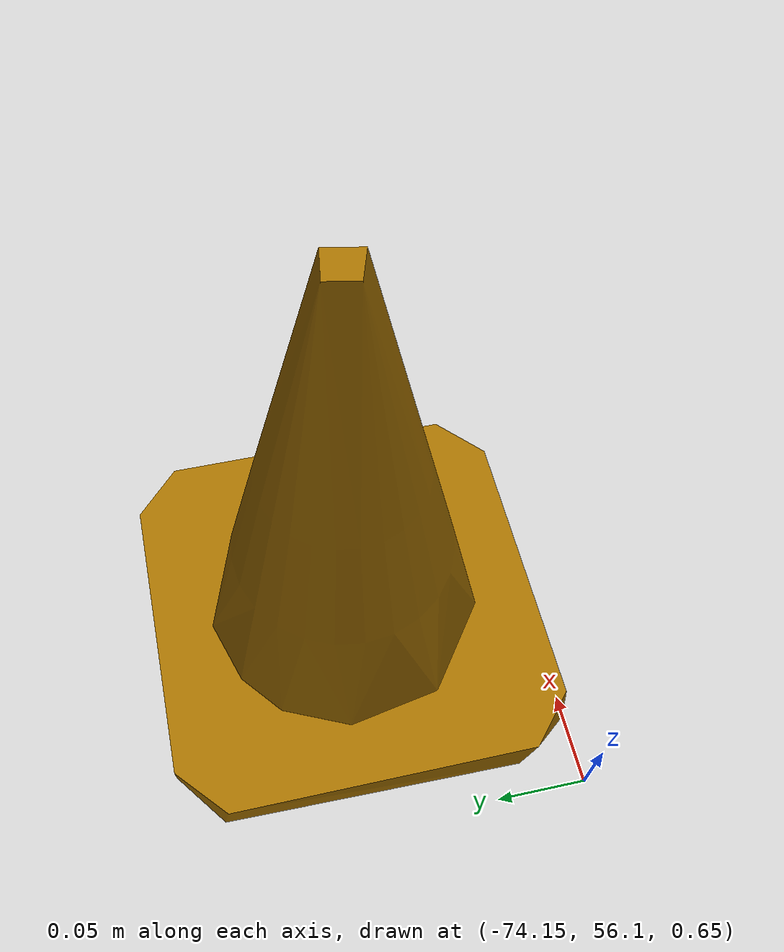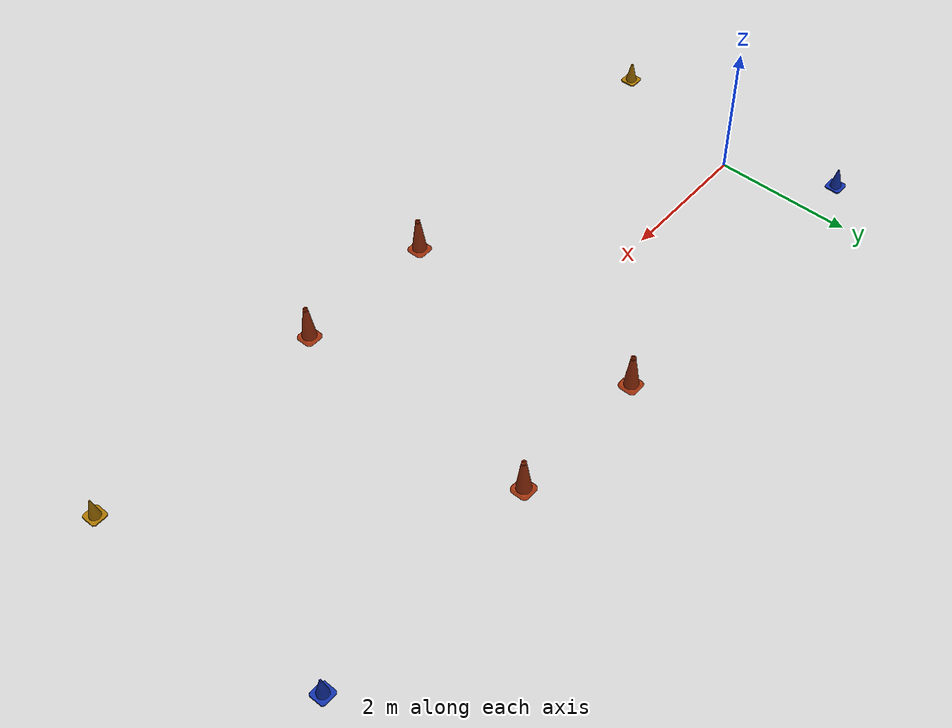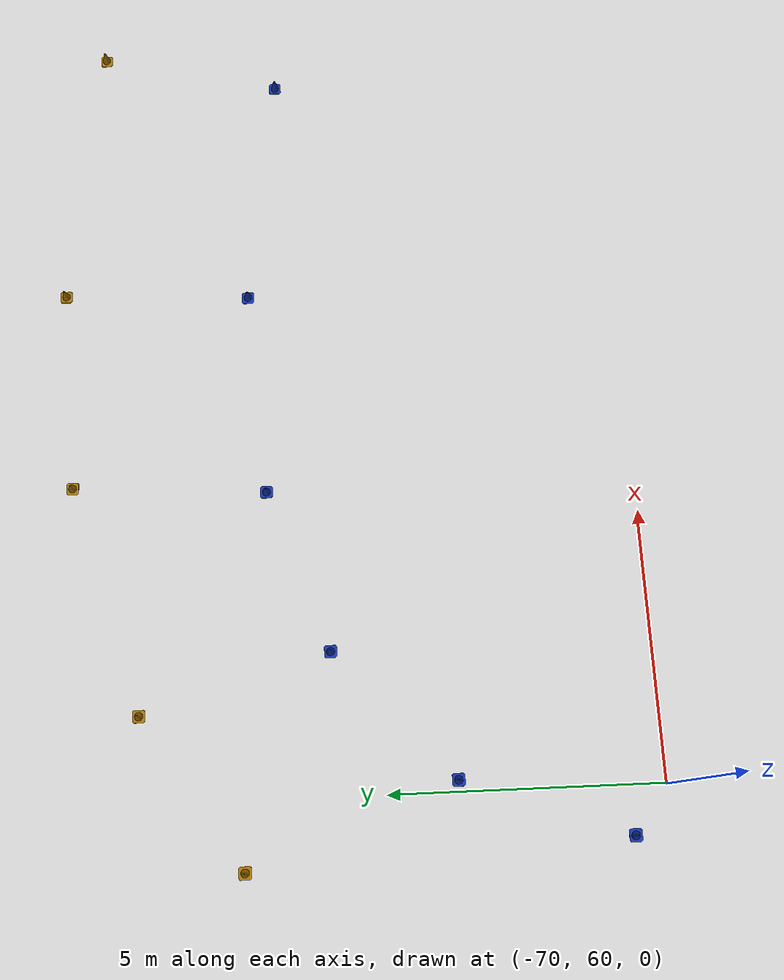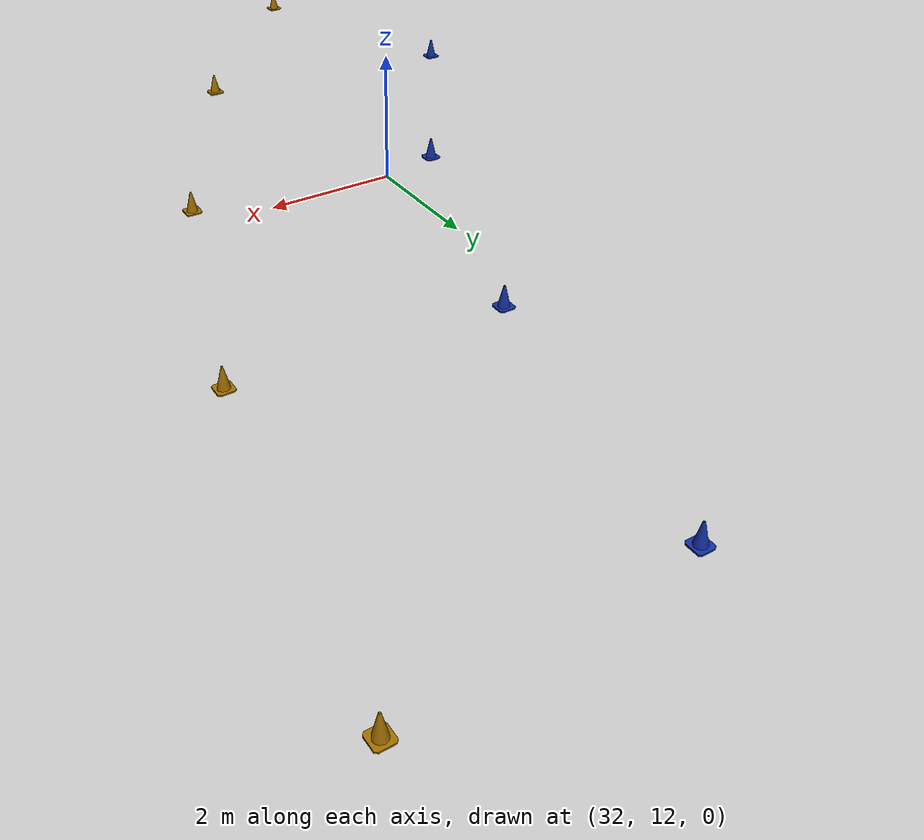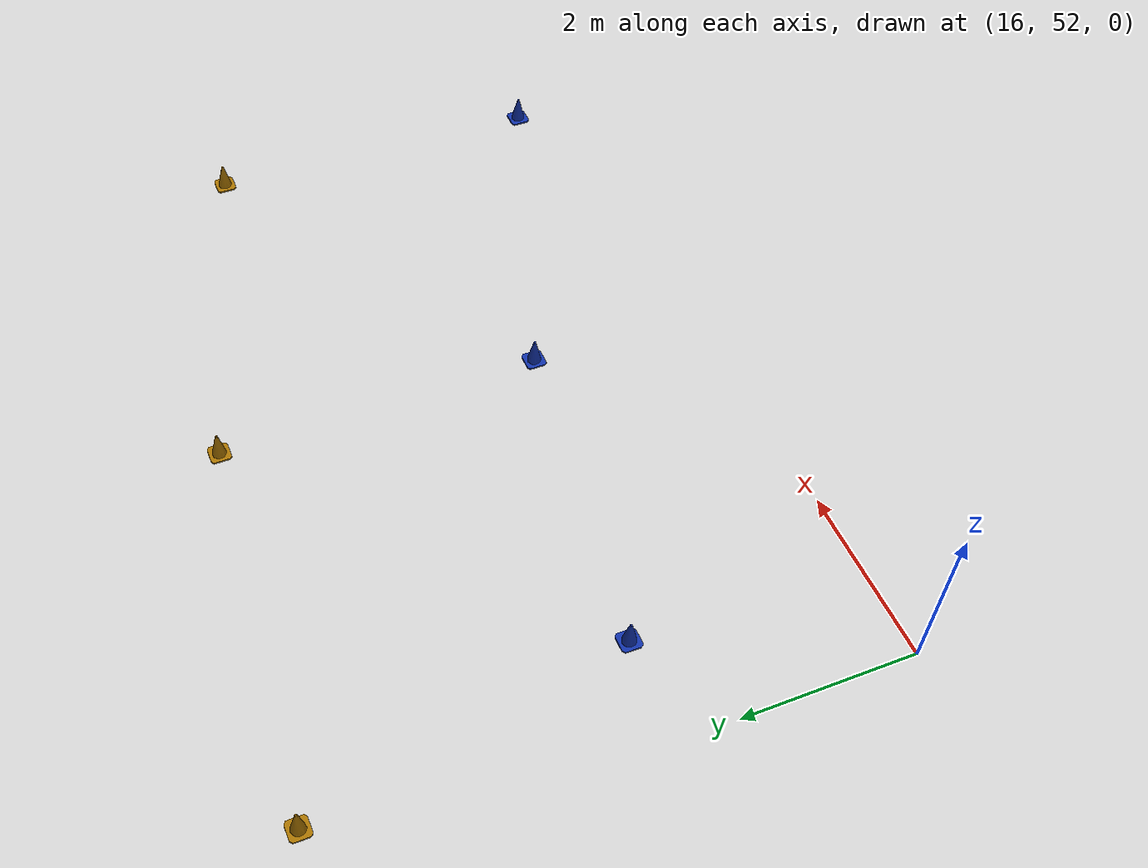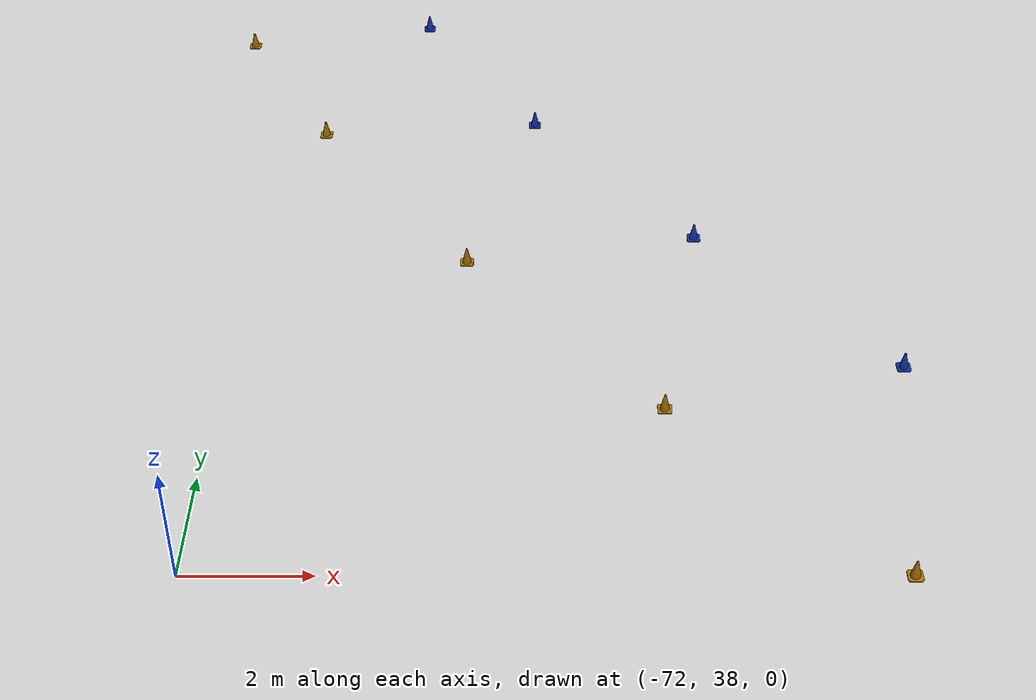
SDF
<sdf version='1.6'>
  <world name='BM_text_bubble'>
    <gui fullscreen='0'>
      <camera name='user_camera'>
        <pose frame=''>-40 40 20 0 0.667643 -1</pose>
        <view_controller>orbit</view_controller>
        <projection_type>perspective</projection_type>
      </camera>
    </gui>

    <!-- WORLD SETTINGS -->
    <scene>
      <ambient>1.0 1.0 1.0 1.0</ambient>
      <shadows>false</shadows>
    </scene>

    <spherical_coordinates>
      <heading_deg>180</heading_deg>

      <!-- Appleton Tower coordinates -->
      <latitude_deg>-27.690733</latitude_deg>
      <longitude_deg>152.656715</longitude_deg>
    </spherical_coordinates>

    <light name='sun' type='directional'>
      <cast_shadows>1</cast_shadows>
      <pose frame=''>0 0 10 0 -0 0</pose>
      <diffuse>0.8 0.8 0.8 1</diffuse>
      <specular>0.1 0.1 0.1 1</specular>
      <attenuation>
        <range>1000</range>
        <constant>0.9</constant>
        <linear>0.01</linear>
        <quadratic>0.001</quadratic>
      </attenuation>
      <direction>-0.5 0.5 -1</direction>
    </light>

    <!-- MODELS -->
    <include>
      <uri>model://ground_plane</uri>
      <pose>0.0 0.0 0.0 0 0 0</pose>
    </include>

    <include>
      <uri>model://BM_text_bubble</uri>
      <pose>0 0 0.5 0 0 0</pose>
    </include>

  </world>
</sdf>

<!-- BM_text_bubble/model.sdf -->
<sdf version='1.6'>
  <model name='track'>

    <include>
      <pose>9.85 1.74 0.15 0 0 0</pose>
      <uri>model://blue_cone</uri>
      <name>blue_cone_0</name>

      <covariance x="0.01" y="0.01" xy="0.0"/>

    </include>

    <include>
      <pose>14.81 2.13 0.15 0 0 0</pose>
      <uri>model://blue_cone</uri>
      <name>blue_cone_1</name>

      <covariance x="0.01" y="0.01" xy="0.0"/>

    </include>

    <include>
      <pose>18.9 2.92 0.15 0 0 0</pose>
      <uri>model://blue_cone</uri>
      <name>blue_cone_2</name>

      <covariance x="0.01" y="0.01" xy="0.0"/>

    </include>

    <include>
      <pose>23.26 4.51 0.15 0 0 0</pose>
      <uri>model://blue_cone</uri>
      <name>blue_cone_3</name>

      <covariance x="0.01" y="0.01" xy="0.0"/>

    </include>

    <include>
      <pose>26.48 6.47 0.15 0 0 0</pose>
      <uri>model://blue_cone</uri>
      <name>blue_cone_4</name>

      <covariance x="0.01" y="0.01" xy="0.0"/>

    </include>

    <include>
      <pose>29.53 9.39 0.15 0 0 0</pose>
      <uri>model://blue_cone</uri>
      <name>blue_cone_5</name>

      <covariance x="0.01" y="0.01" xy="0.0"/>

    </include>

    <include>
      <pose>31.77 12.9 0.15 0 0 0</pose>
      <uri>model://blue_cone</uri>
      <name>blue_cone_6</name>

      <covariance x="0.01" y="0.01" xy="0.0"/>

    </include>

    <include>
      <pose>33.24 16.84 0.15 0 0 0</pose>
      <uri>model://blue_cone</uri>
      <name>blue_cone_7</name>

      <covariance x="0.01" y="0.01" xy="0.0"/>

    </include>

    <include>
      <pose>34.05 21.07 0.15 0 0 0</pose>
      <uri>model://blue_cone</uri>
      <name>blue_cone_8</name>

      <covariance x="0.01" y="0.01" xy="0.0"/>

    </include>

    <include>
      <pose>34.36 25.45 0.15 0 0 0</pose>
      <uri>model://blue_cone</uri>
      <name>blue_cone_9</name>

      <covariance x="0.01" y="0.01" xy="0.0"/>

    </include>

    <include>
      <pose>34.27 30.51 0.15 0 0 0</pose>
      <uri>model://blue_cone</uri>
      <name>blue_cone_10</name>

      <covariance x="0.01" y="0.01" xy="0.0"/>

    </include>

    <include>
      <pose>33.9 34.93 0.15 0 0 0</pose>
      <uri>model://blue_cone</uri>
      <name>blue_cone_11</name>

      <covariance x="0.01" y="0.01" xy="0.0"/>

    </include>

    <include>
      <pose>33.07 39.87 0.15 0 0 0</pose>
      <uri>model://blue_cone</uri>
      <name>blue_cone_12</name>

      <covariance x="0.01" y="0.01" xy="0.0"/>

    </include>

    <include>
      <pose>31.84 43.98 0.15 0 0 0</pose>
      <uri>model://blue_cone</uri>
      <name>blue_cone_13</name>

      <covariance x="0.01" y="0.01" xy="0.0"/>

    </include>

    <include>
      <pose>29.94 47.7 0.15 0 0 0</pose>
      <uri>model://blue_cone</uri>
      <name>blue_cone_14</name>

      <covariance x="0.01" y="0.01" xy="0.0"/>

    </include>

    <include>
      <pose>27.67 50.43 0.15 0 0 0</pose>
      <uri>model://blue_cone</uri>
      <name>blue_cone_15</name>

      <covariance x="0.01" y="0.01" xy="0.0"/>

    </include>

    <include>
      <pose>24.19 52.92 0.15 0 0 0</pose>
      <uri>model://blue_cone</uri>
      <name>blue_cone_16</name>

      <covariance x="0.01" y="0.01" xy="0.0"/>

    </include>

    <include>
      <pose>20.45 54.3 0.15 0 0 0</pose>
      <uri>model://blue_cone</uri>
      <name>blue_cone_17</name>

      <covariance x="0.01" y="0.01" xy="0.0"/>

    </include>

    <include>
      <pose>16.87 54.84 0.15 0 0 0</pose>
      <uri>model://blue_cone</uri>
      <name>blue_cone_18</name>

      <covariance x="0.01" y="0.01" xy="0.0"/>

    </include>

    <include>
      <pose>12.12 54.72 0.15 0 0 0</pose>
      <uri>model://blue_cone</uri>
      <name>blue_cone_19</name>

      <covariance x="0.01" y="0.01" xy="0.0"/>

    </include>

    <include>
      <pose>7.96 54.02 0.15 0 0 0</pose>
      <uri>model://blue_cone</uri>
      <name>blue_cone_20</name>

      <covariance x="0.01" y="0.01" xy="0.0"/>

    </include>

    <include>
      <pose>2.92 52.61 0.15 0 0 0</pose>
      <uri>model://blue_cone</uri>
      <name>blue_cone_21</name>

      <covariance x="0.01" y="0.01" xy="0.0"/>

    </include>

    <include>
      <pose>-1.19 51.14 0.15 0 0 0</pose>
      <uri>model://blue_cone</uri>
      <name>blue_cone_22</name>

      <covariance x="0.01" y="0.01" xy="0.0"/>

    </include>

    <include>
      <pose>-5.9 49.35 0.15 0 0 0</pose>
      <uri>model://blue_cone</uri>
      <name>blue_cone_23</name>

      <covariance x="0.01" y="0.01" xy="0.0"/>

    </include>

    <include>
      <pose>-10.39 47.89 0.15 0 0 0</pose>
      <uri>model://blue_cone</uri>
      <name>blue_cone_24</name>

      <covariance x="0.01" y="0.01" xy="0.0"/>

    </include>

    <include>
      <pose>-14.77 47.15 0.15 0 0 0</pose>
      <uri>model://blue_cone</uri>
      <name>blue_cone_25</name>

      <covariance x="0.01" y="0.01" xy="0.0"/>

    </include>

    <include>
      <pose>-19.13 47.5 0.15 0 0 0</pose>
      <uri>model://blue_cone</uri>
      <name>blue_cone_26</name>

      <covariance x="0.01" y="0.01" xy="0.0"/>

    </include>

    <include>
      <pose>-22.77 48.69 0.15 0 0 0</pose>
      <uri>model://blue_cone</uri>
      <name>blue_cone_27</name>

      <covariance x="0.01" y="0.01" xy="0.0"/>

    </include>

    <include>
      <pose>-27.24 51.07 0.15 0 0 0</pose>
      <uri>model://blue_cone</uri>
      <name>blue_cone_28</name>

      <covariance x="0.01" y="0.01" xy="0.0"/>

    </include>

    <include>
      <pose>-31.21 53.64 0.15 0 0 0</pose>
      <uri>model://blue_cone</uri>
      <name>blue_cone_29</name>

      <covariance x="0.01" y="0.01" xy="0.0"/>

    </include>

    <include>
      <pose>-35.51 56.55 0.15 0 0 0</pose>
      <uri>model://blue_cone</uri>
      <name>blue_cone_30</name>

      <covariance x="0.01" y="0.01" xy="0.0"/>

    </include>

    <include>
      <pose>-39.2 58.95 0.15 0 0 0</pose>
      <uri>model://blue_cone</uri>
      <name>blue_cone_31</name>

      <covariance x="0.01" y="0.01" xy="0.0"/>

    </include>

    <include>
      <pose>-43.08 61.26 0.15 0 0 0</pose>
      <uri>model://blue_cone</uri>
      <name>blue_cone_32</name>

      <covariance x="0.01" y="0.01" xy="0.0"/>

    </include>

    <include>
      <pose>-47.1 63.35 0.15 0 0 0</pose>
      <uri>model://blue_cone</uri>
      <name>blue_cone_33</name>

      <covariance x="0.01" y="0.01" xy="0.0"/>

    </include>

    <include>
      <pose>-52.15 65.45 0.15 0 0 0</pose>
      <uri>model://blue_cone</uri>
      <name>blue_cone_34</name>

      <covariance x="0.01" y="0.01" xy="0.0"/>

    </include>

    <include>
      <pose>-56.08 66.59 0.15 0 0 0</pose>
      <uri>model://blue_cone</uri>
      <name>blue_cone_35</name>

      <covariance x="0.01" y="0.01" xy="0.0"/>

    </include>

    <include>
      <pose>-60.63 67.23 0.15 0 0 0</pose>
      <uri>model://blue_cone</uri>
      <name>blue_cone_36</name>

      <covariance x="0.01" y="0.01" xy="0.0"/>

    </include>

    <include>
      <pose>-64.51 66.97 0.15 0 0 0</pose>
      <uri>model://blue_cone</uri>
      <name>blue_cone_37</name>

      <covariance x="0.01" y="0.01" xy="0.0"/>

    </include>

    <include>
      <pose>-67.49 65.9 0.15 0 0 0</pose>
      <uri>model://blue_cone</uri>
      <name>blue_cone_38</name>

      <covariance x="0.01" y="0.01" xy="0.0"/>

    </include>

    <include>
      <pose>-69.8 63.76 0.15 0 0 0</pose>
      <uri>model://blue_cone</uri>
      <name>blue_cone_39</name>

      <covariance x="0.01" y="0.01" xy="0.0"/>

    </include>

    <include>
      <pose>-70.85 60.78 0.15 0 0 0</pose>
      <uri>model://blue_cone</uri>
      <name>blue_cone_40</name>

      <covariance x="0.01" y="0.01" xy="0.0"/>

    </include>

    <include>
      <pose>-70.6 56.98 0.15 0 0 0</pose>
      <uri>model://blue_cone</uri>
      <name>blue_cone_41</name>

      <covariance x="0.01" y="0.01" xy="0.0"/>

    </include>

    <include>
      <pose>-69.02 52.65 0.15 0 0 0</pose>
      <uri>model://blue_cone</uri>
      <name>blue_cone_42</name>

      <covariance x="0.01" y="0.01" xy="0.0"/>

    </include>

    <include>
      <pose>-66.84 48.92 0.15 0 0 0</pose>
      <uri>model://blue_cone</uri>
      <name>blue_cone_43</name>

      <covariance x="0.01" y="0.01" xy="0.0"/>

    </include>

    <include>
      <pose>-64.08 45.27 0.15 0 0 0</pose>
      <uri>model://blue_cone</uri>
      <name>blue_cone_44</name>

      <covariance x="0.01" y="0.01" xy="0.0"/>

    </include>

    <include>
      <pose>-61.0 41.8 0.15 0 0 0</pose>
      <uri>model://blue_cone</uri>
      <name>blue_cone_45</name>

      <covariance x="0.01" y="0.01" xy="0.0"/>

    </include>

    <include>
      <pose>-57.82 38.55 0.15 0 0 0</pose>
      <uri>model://blue_cone</uri>
      <name>blue_cone_46</name>

      <covariance x="0.01" y="0.01" xy="0.0"/>

    </include>

    <include>
      <pose>-54.18 34.88 0.15 0 0 0</pose>
      <uri>model://blue_cone</uri>
      <name>blue_cone_47</name>

      <covariance x="0.01" y="0.01" xy="0.0"/>

    </include>

    <include>
      <pose>-50.95 31.37 0.15 0 0 0</pose>
      <uri>model://blue_cone</uri>
      <name>blue_cone_48</name>

      <covariance x="0.01" y="0.01" xy="0.0"/>

    </include>

    <include>
      <pose>-48.27 27.85 0.15 0 0 0</pose>
      <uri>model://blue_cone</uri>
      <name>blue_cone_49</name>

      <covariance x="0.01" y="0.01" xy="0.0"/>

    </include>

    <include>
      <pose>-45.87 23.63 0.15 0 0 0</pose>
      <uri>model://blue_cone</uri>
      <name>blue_cone_50</name>

      <covariance x="0.01" y="0.01" xy="0.0"/>

    </include>

    <include>
      <pose>-44.03 19.29 0.15 0 0 0</pose>
      <uri>model://blue_cone</uri>
      <name>blue_cone_51</name>

      <covariance x="0.01" y="0.01" xy="0.0"/>

    </include>

    <include>
      <pose>-42.15 14.33 0.15 0 0 0</pose>
      <uri>model://blue_cone</uri>
      <name>blue_cone_52</name>

      <covariance x="0.01" y="0.01" xy="0.0"/>

    </include>

    <include>
      <pose>-40.26 10.21 0.15 0 0 0</pose>
      <uri>model://blue_cone</uri>
      <name>blue_cone_53</name>

      <covariance x="0.01" y="0.01" xy="0.0"/>

    </include>

    <include>
      <pose>-38.25 7.05 0.15 0 0 0</pose>
      <uri>model://blue_cone</uri>
      <name>blue_cone_54</name>

      <covariance x="0.01" y="0.01" xy="0.0"/>

    </include>

    <include>
      <pose>-35.37 4.0 0.15 0 0 0</pose>
      <uri>model://blue_cone</uri>
      <name>blue_cone_55</name>

      <covariance x="0.01" y="0.01" xy="0.0"/>

    </include>

    <include>
      <pose>-31.91 1.8 0.15 0 0 0</pose>
      <uri>model://blue_cone</uri>
      <name>blue_cone_56</name>

      <covariance x="0.01" y="0.01" xy="0.0"/>

    </include>

    <include>
      <pose>-27.96 0.48 0.15 0 0 0</pose>
      <uri>model://blue_cone</uri>
      <name>blue_cone_57</name>

      <covariance x="0.01" y="0.01" xy="0.0"/>

    </include>

    <include>
      <pose>-23.66 -0.02 0.15 0 0 0</pose>
      <uri>model://blue_cone</uri>
      <name>blue_cone_58</name>

      <covariance x="0.01" y="0.01" xy="0.0"/>

    </include>

    <include>
      <pose>-19.17 0.13 0.15 0 0 0</pose>
      <uri>model://blue_cone</uri>
      <name>blue_cone_59</name>

      <covariance x="0.01" y="0.01" xy="0.0"/>

    </include>

    <include>
      <pose>-13.97 0.72 0.15 0 0 0</pose>
      <uri>model://blue_cone</uri>
      <name>blue_cone_60</name>

      <covariance x="0.01" y="0.01" xy="0.0"/>

    </include>

    <include>
      <pose>-9.39 1.28 0.15 0 0 0</pose>
      <uri>model://blue_cone</uri>
      <name>blue_cone_61</name>

      <covariance x="0.01" y="0.01" xy="0.0"/>

    </include>

    <include>
      <pose>-4.74 1.64 0.15 0 0 0</pose>
      <uri>model://blue_cone</uri>
      <name>blue_cone_62</name>

      <covariance x="0.01" y="0.01" xy="0.0"/>

    </include>

    <include>
      <pose>0.0 1.75 0.15 0 0 0</pose>
      <uri>model://blue_cone</uri>
      <name>blue_cone_63</name>

      <covariance x="0.01" y="0.01" xy="0.0"/>

    </include>

    <include>
      <pose>9.97 -1.76 0.15 0 0 0</pose>
      <uri>model://yellow_cone</uri>
      <name>yellow_cone_64</name>

      <covariance x="0.01" y="0.01" xy="0.0"/>

    </include>

    <include>
      <pose>14.51 -1.44 0.15 0 0 0</pose>
      <uri>model://yellow_cone</uri>
      <name>yellow_cone_65</name>

      <covariance x="0.01" y="0.01" xy="0.0"/>

    </include>

    <include>
      <pose>19.05 -0.65 0.15 0 0 0</pose>
      <uri>model://yellow_cone</uri>
      <name>yellow_cone_66</name>

      <covariance x="0.01" y="0.01" xy="0.0"/>

    </include>

    <include>
      <pose>23.4 0.75 0.15 0 0 0</pose>
      <uri>model://yellow_cone</uri>
      <name>yellow_cone_67</name>

      <covariance x="0.01" y="0.01" xy="0.0"/>

    </include>

    <include>
      <pose>27.38 2.83 0.15 0 0 0</pose>
      <uri>model://yellow_cone</uri>
      <name>yellow_cone_68</name>

      <covariance x="0.01" y="0.01" xy="0.0"/>

    </include>

    <include>
      <pose>30.79 5.58 0.15 0 0 0</pose>
      <uri>model://yellow_cone</uri>
      <name>yellow_cone_69</name>

      <covariance x="0.01" y="0.01" xy="0.0"/>

    </include>

    <include>
      <pose>33.51 8.9 0.15 0 0 0</pose>
      <uri>model://yellow_cone</uri>
      <name>yellow_cone_70</name>

      <covariance x="0.01" y="0.01" xy="0.0"/>

    </include>

    <include>
      <pose>35.49 12.63 0.15 0 0 0</pose>
      <uri>model://yellow_cone</uri>
      <name>yellow_cone_71</name>

      <covariance x="0.01" y="0.01" xy="0.0"/>

    </include>

    <include>
      <pose>36.79 16.59 0.15 0 0 0</pose>
      <uri>model://yellow_cone</uri>
      <name>yellow_cone_72</name>

      <covariance x="0.01" y="0.01" xy="0.0"/>

    </include>

    <include>
      <pose>37.6 21.32 0.15 0 0 0</pose>
      <uri>model://yellow_cone</uri>
      <name>yellow_cone_73</name>

      <covariance x="0.01" y="0.01" xy="0.0"/>

    </include>

    <include>
      <pose>37.87 26.03 0.15 0 0 0</pose>
      <uri>model://yellow_cone</uri>
      <name>yellow_cone_74</name>

      <covariance x="0.01" y="0.01" xy="0.0"/>

    </include>

    <include>
      <pose>37.77 30.7 0.15 0 0 0</pose>
      <uri>model://yellow_cone</uri>
      <name>yellow_cone_75</name>

      <covariance x="0.01" y="0.01" xy="0.0"/>

    </include>

    <include>
      <pose>37.38 35.34 0.15 0 0 0</pose>
      <uri>model://yellow_cone</uri>
      <name>yellow_cone_76</name>

      <covariance x="0.01" y="0.01" xy="0.0"/>

    </include>

    <include>
      <pose>36.63 39.99 0.15 0 0 0</pose>
      <uri>model://yellow_cone</uri>
      <name>yellow_cone_77</name>

      <covariance x="0.01" y="0.01" xy="0.0"/>

    </include>

    <include>
      <pose>35.34 44.6 0.15 0 0 0</pose>
      <uri>model://yellow_cone</uri>
      <name>yellow_cone_78</name>

      <covariance x="0.01" y="0.01" xy="0.0"/>

    </include>

    <include>
      <pose>33.6 48.41 0.15 0 0 0</pose>
      <uri>model://yellow_cone</uri>
      <name>yellow_cone_79</name>

      <covariance x="0.01" y="0.01" xy="0.0"/>

    </include>

    <include>
      <pose>31.11 51.91 0.15 0 0 0</pose>
      <uri>model://yellow_cone</uri>
      <name>yellow_cone_80</name>

      <covariance x="0.01" y="0.01" xy="0.0"/>

    </include>

    <include>
      <pose>28.39 54.4 0.15 0 0 0</pose>
      <uri>model://yellow_cone</uri>
      <name>yellow_cone_81</name>

      <covariance x="0.01" y="0.01" xy="0.0"/>

    </include>

    <include>
      <pose>24.37 56.69 0.15 0 0 0</pose>
      <uri>model://yellow_cone</uri>
      <name>yellow_cone_82</name>

      <covariance x="0.01" y="0.01" xy="0.0"/>

    </include>

    <include>
      <pose>20.48 57.88 0.15 0 0 0</pose>
      <uri>model://yellow_cone</uri>
      <name>yellow_cone_83</name>

      <covariance x="0.01" y="0.01" xy="0.0"/>

    </include>

    <include>
      <pose>16.22 58.38 0.15 0 0 0</pose>
      <uri>model://yellow_cone</uri>
      <name>yellow_cone_84</name>

      <covariance x="0.01" y="0.01" xy="0.0"/>

    </include>

    <include>
      <pose>11.75 58.2 0.15 0 0 0</pose>
      <uri>model://yellow_cone</uri>
      <name>yellow_cone_85</name>

      <covariance x="0.01" y="0.01" xy="0.0"/>

    </include>

    <include>
      <pose>7.19 57.43 0.15 0 0 0</pose>
      <uri>model://yellow_cone</uri>
      <name>yellow_cone_86</name>

      <covariance x="0.01" y="0.01" xy="0.0"/>

    </include>

    <include>
      <pose>2.7 56.21 0.15 0 0 0</pose>
      <uri>model://yellow_cone</uri>
      <name>yellow_cone_87</name>

      <covariance x="0.01" y="0.01" xy="0.0"/>

    </include>

    <include>
      <pose>-2.42 54.42 0.15 0 0 0</pose>
      <uri>model://yellow_cone</uri>
      <name>yellow_cone_88</name>

      <covariance x="0.01" y="0.01" xy="0.0"/>

    </include>

    <include>
      <pose>-7.11 52.64 0.15 0 0 0</pose>
      <uri>model://yellow_cone</uri>
      <name>yellow_cone_89</name>

      <covariance x="0.01" y="0.01" xy="0.0"/>

    </include>

    <include>
      <pose>-11.28 51.27 0.15 0 0 0</pose>
      <uri>model://yellow_cone</uri>
      <name>yellow_cone_90</name>

      <covariance x="0.01" y="0.01" xy="0.0"/>

    </include>

    <include>
      <pose>-14.96 50.65 0.15 0 0 0</pose>
      <uri>model://yellow_cone</uri>
      <name>yellow_cone_91</name>

      <covariance x="0.01" y="0.01" xy="0.0"/>

    </include>

    <include>
      <pose>-18.97 51.05 0.15 0 0 0</pose>
      <uri>model://yellow_cone</uri>
      <name>yellow_cone_92</name>

      <covariance x="0.01" y="0.01" xy="0.0"/>

    </include>

    <include>
      <pose>-22.66 52.5 0.15 0 0 0</pose>
      <uri>model://yellow_cone</uri>
      <name>yellow_cone_93</name>

      <covariance x="0.01" y="0.01" xy="0.0"/>

    </include>

    <include>
      <pose>-26.89 54.99 0.15 0 0 0</pose>
      <uri>model://yellow_cone</uri>
      <name>yellow_cone_94</name>

      <covariance x="0.01" y="0.01" xy="0.0"/>

    </include>

    <include>
      <pose>-30.92 57.68 0.15 0 0 0</pose>
      <uri>model://yellow_cone</uri>
      <name>yellow_cone_95</name>

      <covariance x="0.01" y="0.01" xy="0.0"/>

    </include>

    <include>
      <pose>-34.48 60.07 0.15 0 0 0</pose>
      <uri>model://yellow_cone</uri>
      <name>yellow_cone_96</name>

      <covariance x="0.01" y="0.01" xy="0.0"/>

    </include>

    <include>
      <pose>-38.33 62.52 0.15 0 0 0</pose>
      <uri>model://yellow_cone</uri>
      <name>yellow_cone_97</name>

      <covariance x="0.01" y="0.01" xy="0.0"/>

    </include>

    <include>
      <pose>-42.41 64.89 0.15 0 0 0</pose>
      <uri>model://yellow_cone</uri>
      <name>yellow_cone_98</name>

      <covariance x="0.01" y="0.01" xy="0.0"/>

    </include>

    <include>
      <pose>-46.66 67.01 0.15 0 0 0</pose>
      <uri>model://yellow_cone</uri>
      <name>yellow_cone_99</name>

      <covariance x="0.01" y="0.01" xy="0.0"/>

    </include>

    <include>
      <pose>-51.0 68.75 0.15 0 0 0</pose>
      <uri>model://yellow_cone</uri>
      <name>yellow_cone_100</name>

      <covariance x="0.01" y="0.01" xy="0.0"/>

    </include>

    <include>
      <pose>-55.3 70.0 0.15 0 0 0</pose>
      <uri>model://yellow_cone</uri>
      <name>yellow_cone_101</name>

      <covariance x="0.01" y="0.01" xy="0.0"/>

    </include>

    <include>
      <pose>-60.47 70.73 0.15 0 0 0</pose>
      <uri>model://yellow_cone</uri>
      <name>yellow_cone_102</name>

      <covariance x="0.01" y="0.01" xy="0.0"/>

    </include>

    <include>
      <pose>-64.3 70.55 0.15 0 0 0</pose>
      <uri>model://yellow_cone</uri>
      <name>yellow_cone_103</name>

      <covariance x="0.01" y="0.01" xy="0.0"/>

    </include>

    <include>
      <pose>-68.49 69.32 0.15 0 0 0</pose>
      <uri>model://yellow_cone</uri>
      <name>yellow_cone_104</name>

      <covariance x="0.01" y="0.01" xy="0.0"/>

    </include>

    <include>
      <pose>-71.19 67.5 0.15 0 0 0</pose>
      <uri>model://yellow_cone</uri>
      <name>yellow_cone_105</name>

      <covariance x="0.01" y="0.01" xy="0.0"/>

    </include>

    <include>
      <pose>-73.49 64.29 0.15 0 0 0</pose>
      <uri>model://yellow_cone</uri>
      <name>yellow_cone_106</name>

      <covariance x="0.01" y="0.01" xy="0.0"/>

    </include>

    <include>
      <pose>-74.4 60.4 0.15 0 0 0</pose>
      <uri>model://yellow_cone</uri>
      <name>yellow_cone_107</name>

      <covariance x="0.01" y="0.01" xy="0.0"/>

    </include>

    <include>
      <pose>-74.02 56.21 0.15 0 0 0</pose>
      <uri>model://yellow_cone</uri>
      <name>yellow_cone_108</name>

      <covariance x="0.01" y="0.01" xy="0.0"/>

    </include>

    <include>
      <pose>-72.56 51.95 0.15 0 0 0</pose>
      <uri>model://yellow_cone</uri>
      <name>yellow_cone_109</name>

      <covariance x="0.01" y="0.01" xy="0.0"/>

    </include>

    <include>
      <pose>-70.79 48.6 0.15 0 0 0</pose>
      <uri>model://yellow_cone</uri>
      <name>yellow_cone_110</name>

      <covariance x="0.01" y="0.01" xy="0.0"/>

    </include>

    <include>
      <pose>-68.01 44.58 0.15 0 0 0</pose>
      <uri>model://yellow_cone</uri>
      <name>yellow_cone_111</name>

      <covariance x="0.01" y="0.01" xy="0.0"/>

    </include>

    <include>
      <pose>-64.85 40.82 0.15 0 0 0</pose>
      <uri>model://yellow_cone</uri>
      <name>yellow_cone_112</name>

      <covariance x="0.01" y="0.01" xy="0.0"/>

    </include>

    <include>
      <pose>-61.59 37.37 0.15 0 0 0</pose>
      <uri>model://yellow_cone</uri>
      <name>yellow_cone_113</name>

      <covariance x="0.01" y="0.01" xy="0.0"/>

    </include>

    <include>
      <pose>-57.84 33.61 0.15 0 0 0</pose>
      <uri>model://yellow_cone</uri>
      <name>yellow_cone_114</name>

      <covariance x="0.01" y="0.01" xy="0.0"/>

    </include>

    <include>
      <pose>-54.57 30.19 0.15 0 0 0</pose>
      <uri>model://yellow_cone</uri>
      <name>yellow_cone_115</name>

      <covariance x="0.01" y="0.01" xy="0.0"/>

    </include>

    <include>
      <pose>-51.92 26.96 0.15 0 0 0</pose>
      <uri>model://yellow_cone</uri>
      <name>yellow_cone_116</name>

      <covariance x="0.01" y="0.01" xy="0.0"/>

    </include>

    <include>
      <pose>-49.58 23.22 0.15 0 0 0</pose>
      <uri>model://yellow_cone</uri>
      <name>yellow_cone_117</name>

      <covariance x="0.01" y="0.01" xy="0.0"/>

    </include>

    <include>
      <pose>-47.53 18.65 0.15 0 0 0</pose>
      <uri>model://yellow_cone</uri>
      <name>yellow_cone_118</name>

      <covariance x="0.01" y="0.01" xy="0.0"/>

    </include>

    <include>
      <pose>-45.9 14.31 0.15 0 0 0</pose>
      <uri>model://yellow_cone</uri>
      <name>yellow_cone_119</name>

      <covariance x="0.01" y="0.01" xy="0.0"/>

    </include>

    <include>
      <pose>-43.99 9.82 0.15 0 0 0</pose>
      <uri>model://yellow_cone</uri>
      <name>yellow_cone_120</name>

      <covariance x="0.01" y="0.01" xy="0.0"/>

    </include>

    <include>
      <pose>-41.87 6.11 0.15 0 0 0</pose>
      <uri>model://yellow_cone</uri>
      <name>yellow_cone_121</name>

      <covariance x="0.01" y="0.01" xy="0.0"/>

    </include>

    <include>
      <pose>-39.18 2.77 0.15 0 0 0</pose>
      <uri>model://yellow_cone</uri>
      <name>yellow_cone_122</name>

      <covariance x="0.01" y="0.01" xy="0.0"/>

    </include>

    <include>
      <pose>-35.89 0.04 0.15 0 0 0</pose>
      <uri>model://yellow_cone</uri>
      <name>yellow_cone_123</name>

      <covariance x="0.01" y="0.01" xy="0.0"/>

    </include>

    <include>
      <pose>-32.1 -1.93 0.15 0 0 0</pose>
      <uri>model://yellow_cone</uri>
      <name>yellow_cone_124</name>

      <covariance x="0.01" y="0.01" xy="0.0"/>

    </include>

    <include>
      <pose>-28.0 -3.08 0.15 0 0 0</pose>
      <uri>model://yellow_cone</uri>
      <name>yellow_cone_125</name>

      <covariance x="0.01" y="0.01" xy="0.0"/>

    </include>

    <include>
      <pose>-23.77 -3.51 0.15 0 0 0</pose>
      <uri>model://yellow_cone</uri>
      <name>yellow_cone_126</name>

      <covariance x="0.01" y="0.01" xy="0.0"/>

    </include>

    <include>
      <pose>-18.88 -3.36 0.15 0 0 0</pose>
      <uri>model://yellow_cone</uri>
      <name>yellow_cone_127</name>

      <covariance x="0.01" y="0.01" xy="0.0"/>

    </include>

    <include>
      <pose>-14.17 -2.84 0.15 0 0 0</pose>
      <uri>model://yellow_cone</uri>
      <name>yellow_cone_128</name>

      <covariance x="0.01" y="0.01" xy="0.0"/>

    </include>

    <include>
      <pose>-9.02 -2.2 0.15 0 0 0</pose>
      <uri>model://yellow_cone</uri>
      <name>yellow_cone_129</name>

      <covariance x="0.01" y="0.01" xy="0.0"/>

    </include>

    <include>
      <pose>-4.57 -1.85 0.15 0 0 0</pose>
      <uri>model://yellow_cone</uri>
      <name>yellow_cone_130</name>

      <covariance x="0.01" y="0.01" xy="0.0"/>

    </include>

    <include>
      <pose>-0.0 -1.75 0.15 0 0 0</pose>
      <uri>model://yellow_cone</uri>
      <name>yellow_cone_131</name>

      <covariance x="0.01" y="0.01" xy="0.0"/>

    </include>

    <include>
      <pose>6.58 1.69 0.15 0 0 0</pose>
      <uri>model://big_cone</uri>
      <name>big_cone_132</name>

      <covariance x="0.01" y="0.01" xy="0.0"/>

    </include>

    <include>
      <pose>6.55 -1.81 0.15 0 0 0</pose>
      <uri>model://big_cone</uri>
      <name>big_cone_133</name>

      <covariance x="0.01" y="0.01" xy="0.0"/>

    </include>

    <include>
      <pose>4.58 1.71 0.15 0 0 0</pose>
      <uri>model://big_cone</uri>
      <name>big_cone_134</name>

      <covariance x="0.01" y="0.01" xy="0.0"/>

    </include>

    <include>
      <pose>4.55 -1.79 0.15 0 0 0</pose>
      <uri>model://big_cone</uri>
      <name>big_cone_135</name>

      <covariance x="0.01" y="0.01" xy="0.0"/>

    </include>

    <static>0</static>
    <allow_auto_disable>1</allow_auto_disable>
  </model>
</sdf>

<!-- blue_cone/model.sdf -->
<sdf version='1.6'>
  <model name='blue_cone'>
    <link name='link'>
      <pose frame=''>0 0 0 0 0 0</pose>
      <inertial>
        <inertia>
          <ixx>0.0016</ixx>
          <ixy>0</ixy>
          <ixz>0</ixz>
          <iyy>0.0016</iyy>
          <iyz>0</iyz>
          <izz>0.0010</izz>
        </inertia>
        <mass>0.45</mass>
      </inertial>
      <visual name='visual'>
        <geometry>
          <mesh>
            <uri>model://cone_blue.dae</uri>
          </mesh>
        </geometry>
        <cast_shadows>1</cast_shadows>
      </visual>
      <collision name='collision'>
        <max_contacts>3</max_contacts>
        <geometry>
          <mesh>
            <uri>model://cone_blue.dae</uri>
          </mesh>
        </geometry>
      </collision>
    </link>
  </model>
</sdf>

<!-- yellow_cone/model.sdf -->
<sdf version='1.6'>
  <model name='yellow_cone'>
    <link name='link'>
      <pose frame=''>0 0 0 0 0 0</pose>
      <inertial>
        <inertia>
          <ixx>0.0016</ixx>
          <ixy>0</ixy>
          <ixz>0</ixz>
          <iyy>0.0016</iyy>
          <iyz>0</iyz>
          <izz>0.0010</izz>
        </inertia>
        <mass>0.45</mass>
      </inertial>
      <visual name='visual'>
        <geometry>
          <mesh>
            <uri>model://cone_yellow.dae</uri>
          </mesh>
        </geometry>
        <cast_shadows>1</cast_shadows>
      </visual>
      <collision name='collision'>
        <max_contacts>3</max_contacts>
        <geometry>
          <mesh>
            <uri>model://cone_yellow.dae</uri>
          </mesh>
        </geometry>
      </collision>
    </link>
  </model>
</sdf>

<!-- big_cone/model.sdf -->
<sdf version='1.6'>
  <model name='big_cone'>
    <link name='link'>
      <pose frame=''>0 0 0 0 0 0</pose>
      <inertial>
        <inertia>
          <ixx>0.0016</ixx>
          <ixy>0</ixy>
          <ixz>0</ixz>
          <iyy>0.0016</iyy>
          <iyz>0</iyz>
          <izz>0.0010</izz>
        </inertia>
        <mass>0.45</mass>
      </inertial>
      <visual name='visual'>
        <geometry>
          <mesh>
            <uri>model://cone_big.dae</uri>
          </mesh>
        </geometry>
        <cast_shadows>1</cast_shadows>
      </visual>
      <collision name='collision'>
        <max_contacts>3</max_contacts>
        <geometry>
          <mesh>
            <uri>model://cone_big.dae</uri>
          </mesh>
        </geometry>
      </collision>
    </link>
  </model>
</sdf>
